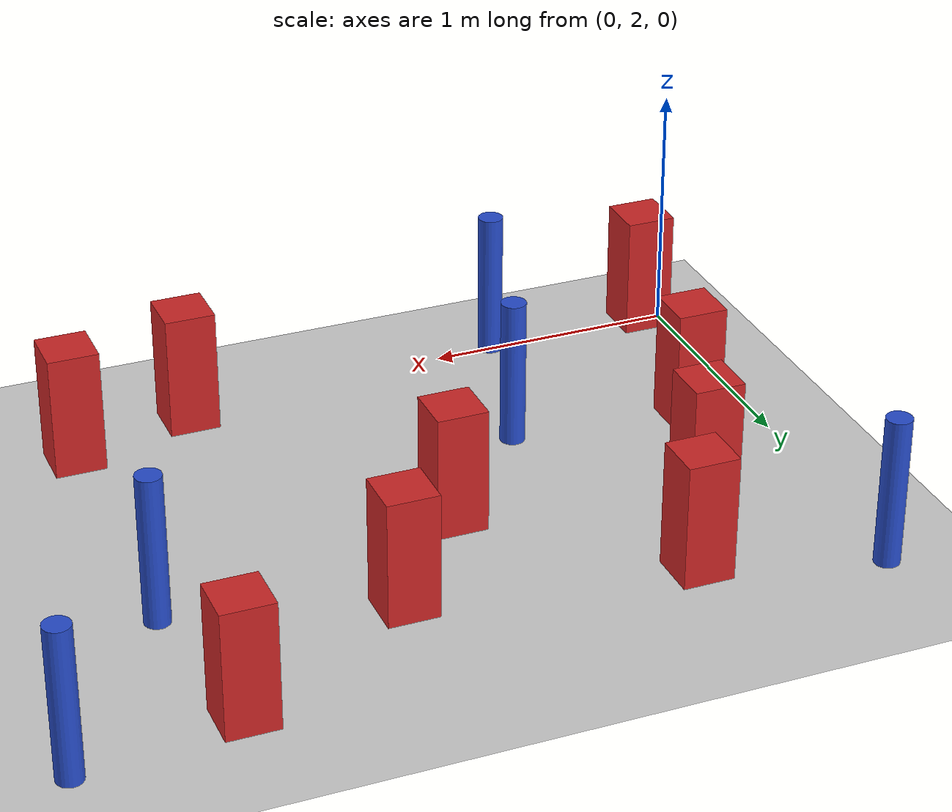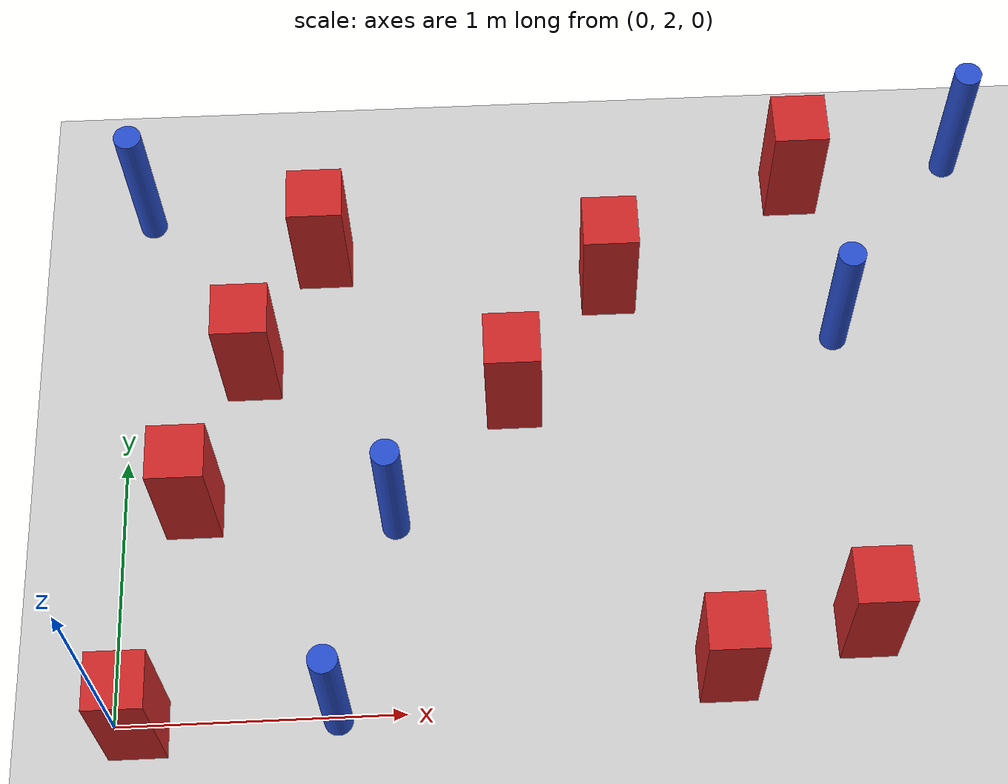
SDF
<sdf version="1.6">
 <world name="default">
  <model name="ground_plane">
   <static>1</static>
   <link name="link">
    <collision name="collision">
     <geometry><plane><normal>0 0 1</normal><size>100 100</size></plane></geometry>
     <surface><friction><ode><mu>100</mu><mu2>50</mu2></ode></friction></surface>
    </collision>
    <visual name="visual">
     <cast_shadows>0</cast_shadows>
     <geometry><plane><normal>0 0 1</normal><size>100 100</size></plane></geometry>
     <material>
      <ambient>1.0 1.0 1.0 1.0</ambient>
      <diffuse>0.8 0.8 0.8 1.0</diffuse>
      <specular>0.01 0.01 0.01 1.000000</specular>
     </material>
    </visual>
   </link>
  </model>
  <model name="pole_obstacle32">
   <static>true</static>
   <pose>0.96854789514 2.70589181334 7.38925637345e-09 -8.47170692799e-08 1.24976765046e-08 -1.74513093018e-07</pose>
   <link name="link">
    <pose>0 0 0.3 0 -0 0</pose>
    <inertial>
     <mass>1</mass>
     <inertia><ixx>0.145833</ixx><ixy>0</ixy><ixz>0</ixz><iyy>0.145833</iyy><iyz>0</iyz><izz>0.125</izz></inertia>
    </inertial>
    <collision name="collision">
     <geometry><cylinder><radius>0.05</radius><length>.6</length></cylinder></geometry>
    </collision>
    <visual name="visual">
     <geometry><cylinder><radius>0.05</radius><length>.6</length></cylinder></geometry>
     <material>
      <script><name>Gazebo/Blue</name><uri>file://media/materials/scripts/gazebo.material</uri></script>
     </material>
    </visual>
   </link>
  </model>
  <model name="pole_obstacle46">
   <static>true</static>
   <pose>3.12625341546 4.15890383499 7.38925637345e-09 -8.47170692798e-08 1.24976765033e-08 -1.74513093019e-07</pose>
   <link name="link">
    <pose>0 0 0.3 0 -0 0</pose>
    <inertial>
     <mass>1</mass>
     <inertia><ixx>0.145833</ixx><ixy>0</ixy><ixz>0</ixz><iyy>0.145833</iyy><iyz>0</iyz><izz>0.125</izz></inertia>
    </inertial>
    <collision name="collision">
     <geometry><cylinder><radius>0.05</radius><length>.6</length></cylinder></geometry>
    </collision>
    <visual name="visual">
     <geometry><cylinder><radius>0.05</radius><length>.6</length></cylinder></geometry>
     <material>
      <script><name>Gazebo/Blue</name><uri>file://media/materials/scripts/gazebo.material</uri></script>
     </material>
    </visual>
   </link>
  </model>
  <model name="square_post_obstacle59">
   <static>true</static>
   <pose>1.40726004822 3.18187855667 1.91545236811e-07 -7.35059704564e-06 1.12565212e-07 2.39332434364e-05</pose>
   <link name="link">
    <pose>0 0 0.25 0 -0 0</pose>
    <inertial>
     <mass>100</mass>
     <inertia>
      <ixx>0.166667</ixx>
      <ixy>0</ixy>
      <ixz>0</ixz>
      <iyy>0.166667</iyy>
      <iyz>0</iyz>
      <izz>0.166667</izz>
     </inertia>
    </inertial>
    <collision name="collision"><geometry><box><size>.2 .2 .5</size></box></geometry></collision>
    <visual name="visual">
     <geometry><box><size>.2 .2 .5</size></box></geometry>
     <material>
      <script><name>Gazebo/Red</name><uri>file://media/materials/scripts/gazebo.material</uri></script>
     </material>
    </visual>
   </link>
  </model>
  <model name="square_post_obstacle80">
   <static>true</static>
   <pose>0.714723443884 3.81570896859 1.91545236811e-07 -7.35059704564e-06 1.12565212e-07 2.39332434364e-05</pose>
   <link name="link">
    <pose>0 0 0.25 0 -0 0</pose>
    <inertial>
     <mass>100</mass>
     <inertia>
      <ixx>0.166667</ixx>
      <ixy>0</ixy>
      <ixz>0</ixz>
      <iyy>0.166667</iyy>
      <iyz>0</iyz>
      <izz>0.166667</izz>
     </inertia>
    </inertial>
    <collision name="collision"><geometry><box><size>.2 .2 .5</size></box></geometry></collision>
    <visual name="visual">
     <geometry><box><size>.2 .2 .5</size></box></geometry>
     <material>
      <script><name>Gazebo/Red</name><uri>file://media/materials/scripts/gazebo.material</uri></script>
     </material>
    </visual>
   </link>
  </model>
  <model name="pole_obstacle110">
   <static>true</static>
   <pose>0.050401922978 4.01981426665 7.38925637345e-09 -8.47170692799e-08 1.24976765e-08 -1.74513093021e-07</pose>
   <link name="link">
    <pose>0 0 0.3 0 -0 0</pose>
    <inertial>
     <mass>1</mass>
     <inertia><ixx>0.145833</ixx><ixy>0</ixy><ixz>0</ixz><iyy>0.145833</iyy><iyz>0</iyz><izz>0.125</izz></inertia>
    </inertial>
    <collision name="collision">
     <geometry><cylinder><radius>0.05</radius><length>.6</length></cylinder></geometry>
    </collision>
    <visual name="visual">
     <geometry><cylinder><radius>0.05</radius><length>.6</length></cylinder></geometry>
     <material>
      <script><name>Gazebo/Blue</name><uri>file://media/materials/scripts/gazebo.material</uri></script>
     </material>
    </visual>
   </link>
  </model>
  <model name="pole_obstacle115">
   <static>true</static>
   <pose>0.764776637621 1.98578209945 7.38925637345e-09 -8.47170692799e-08 1.24976765066e-08 -1.74513093016e-07</pose>
   <link name="link">
    <pose>0 0 0.3 0 -0 0</pose>
    <inertial>
     <mass>1</mass>
     <inertia><ixx>0.145833</ixx><ixy>0</ixy><ixz>0</ixz><iyy>0.145833</iyy><iyz>0</iyz><izz>0.125</izz></inertia>
    </inertial>
    <collision name="collision">
     <geometry><cylinder><radius>0.05</radius><length>.6</length></cylinder></geometry>
    </collision>
    <visual name="visual">
     <geometry><cylinder><radius>0.05</radius><length>.6</length></cylinder></geometry>
     <material>
      <script><name>Gazebo/Blue</name><uri>file://media/materials/scripts/gazebo.material</uri></script>
     </material>
    </visual>
   </link>
  </model>
  <model name="square_post_obstacle108">
   <static>true</static>
   <pose>1.77909898433 3.64906854002 1.91545236811e-07 -7.35059704564e-06 1.12565212e-07 2.39332434364e-05</pose>
   <link name="link">
    <pose>0 0 0.25 0 -0 0</pose>
    <inertial>
     <mass>100</mass>
     <inertia>
      <ixx>0.166667</ixx>
      <ixy>0</ixy>
      <ixz>0</ixz>
      <iyy>0.166667</iyy>
      <iyz>0</iyz>
      <izz>0.166667</izz>
     </inertia>
    </inertial>
    <collision name="collision"><geometry><box><size>.2 .2 .5</size></box></geometry></collision>
    <visual name="visual">
     <geometry><box><size>.2 .2 .5</size></box></geometry>
     <material>
      <script><name>Gazebo/Red</name><uri>file://media/materials/scripts/gazebo.material</uri></script>
     </material>
    </visual>
   </link>
  </model>
  <model name="square_post_obstacle115">
   <static>true</static>
   <pose>0.45429999532 3.34309313988 1.91545236811e-07 -7.35059704564e-06 1.12565212e-07 2.39332434364e-05</pose>
   <link name="link">
    <pose>0 0 0.25 0 -0 0</pose>
    <inertial>
     <mass>100</mass>
     <inertia>
      <ixx>0.166667</ixx>
      <ixy>0</ixy>
      <ixz>0</ixz>
      <iyy>0.166667</iyy>
      <iyz>0</iyz>
      <izz>0.166667</izz>
     </inertia>
    </inertial>
    <collision name="collision"><geometry><box><size>.2 .2 .5</size></box></geometry></collision>
    <visual name="visual">
     <geometry><box><size>.2 .2 .5</size></box></geometry>
     <material>
      <script><name>Gazebo/Red</name><uri>file://media/materials/scripts/gazebo.material</uri></script>
     </material>
    </visual>
   </link>
  </model>
  <model name="square_post_obstacle120">
   <static>true</static>
   <pose>2.09988776933 2.09452551395 1.91545236811e-07 -7.35059704564e-06 1.12565212e-07 2.39332434364e-05</pose>
   <link name="link">
    <pose>0 0 0.25 0 -0 0</pose>
    <inertial>
     <mass>100</mass>
     <inertia>
      <ixx>0.166667</ixx>
      <ixy>0</ixy>
      <ixz>0</ixz>
      <iyy>0.166667</iyy>
      <iyz>0</iyz>
      <izz>0.166667</izz>
     </inertia>
    </inertial>
    <collision name="collision"><geometry><box><size>.2 .2 .5</size></box></geometry></collision>
    <visual name="visual">
     <geometry><box><size>.2 .2 .5</size></box></geometry>
     <material>
      <script><name>Gazebo/Red</name><uri>file://media/materials/scripts/gazebo.material</uri></script>
     </material>
    </visual>
   </link>
  </model>
  <model name="square_post_obstacle141">
   <static>true</static>
   <pose>0.0869611090962 1.98392740131 1.91545236811e-07 -7.35059704564e-06 1.12565212e-07 2.39332434364e-05</pose>
   <link name="link">
    <pose>0 0 0.25 0 -0 0</pose>
    <inertial>
     <mass>100</mass>
     <inertia>
      <ixx>0.166667</ixx>
      <ixy>0</ixy>
      <ixz>0</ixz>
      <iyy>0.166667</iyy>
      <iyz>0</iyz>
      <izz>0.166667</izz>
     </inertia>
    </inertial>
    <collision name="collision"><geometry><box><size>.2 .2 .5</size></box></geometry></collision>
    <visual name="visual">
     <geometry><box><size>.2 .2 .5</size></box></geometry>
     <material>
      <script><name>Gazebo/Red</name><uri>file://media/materials/scripts/gazebo.material</uri></script>
     </material>
    </visual>
   </link>
  </model>
  <model name="square_post_obstacle143">
   <static>true</static>
   <pose>2.5057814995 4.06292753954 1.91545236811e-07 -7.35059704564e-06 1.12565212e-07 2.39332434364e-05</pose>
   <link name="link">
    <pose>0 0 0.25 0 -0 0</pose>
    <inertial>
     <mass>100</mass>
     <inertia>
      <ixx>0.166667</ixx>
      <ixy>0</ixy>
      <ixz>0</ixz>
      <iyy>0.166667</iyy>
      <iyz>0</iyz>
      <izz>0.166667</izz>
     </inertia>
    </inertial>
    <collision name="collision"><geometry><box><size>.2 .2 .5</size></box></geometry></collision>
    <visual name="visual">
     <geometry><box><size>.2 .2 .5</size></box></geometry>
     <material>
      <script><name>Gazebo/Red</name><uri>file://media/materials/scripts/gazebo.material</uri></script>
     </material>
    </visual>
   </link>
  </model>
  <model name="pole_obstacle161">
   <static>true</static>
   <pose>2.61265467343 3.40513679091 7.38925637345e-09 -8.47170692798e-08 1.24976764939e-08 -1.74513093025e-07</pose>
   <link name="link">
    <pose>0 0 0.3 0 -0 0</pose>
    <inertial>
     <mass>1</mass>
     <inertia><ixx>0.145833</ixx><ixy>0</ixy><ixz>0</ixz><iyy>0.145833</iyy><iyz>0</iyz><izz>0.125</izz></inertia>
    </inertial>
    <collision name="collision">
     <geometry><cylinder><radius>0.05</radius><length>.6</length></cylinder></geometry>
    </collision>
    <visual name="visual">
     <geometry><cylinder><radius>0.05</radius><length>.6</length></cylinder></geometry>
     <material>
      <script><name>Gazebo/Blue</name><uri>file://media/materials/scripts/gazebo.material</uri></script>
     </material>
    </visual>
   </link>
  </model>
  <model name="square_post_obstacle163">
   <static>true</static>
   <pose>2.59728123891 2.23319288615 1.91545236811e-07 -7.35059704564e-06 1.12565212e-07 2.39332434364e-05</pose>
   <link name="link">
    <pose>0 0 0.25 0 -0 0</pose>
    <inertial>
     <mass>100</mass>
     <inertia>
      <ixx>0.166667</ixx>
      <ixy>0</ixy>
      <ixz>0</ixz>
      <iyy>0.166667</iyy>
      <iyz>0</iyz>
      <izz>0.166667</izz>
     </inertia>
    </inertial>
    <collision name="collision"><geometry><box><size>.2 .2 .5</size></box></geometry></collision>
    <visual name="visual">
     <geometry><box><size>.2 .2 .5</size></box></geometry>
     <material>
      <script><name>Gazebo/Red</name><uri>file://media/materials/scripts/gazebo.material</uri></script>
     </material>
    </visual>
   </link>
  </model>
  <model name="square_post_obstacle191">
   <static>true</static>
   <pose>0.25123047751 2.79374631489 1.91545236811e-07 -7.35059704564e-06 1.12565212e-07 2.39332434364e-05</pose>
   <link name="link">
    <pose>0 0 0.25 0 -0 0</pose>
    <inertial>
     <mass>100</mass>
     <inertia>
      <ixx>0.166667</ixx>
      <ixy>0</ixy>
      <ixz>0</ixz>
      <iyy>0.166667</iyy>
      <iyz>0</iyz>
      <izz>0.166667</izz>
     </inertia>
    </inertial>
    <collision name="collision"><geometry><box><size>.2 .2 .5</size></box></geometry></collision>
    <visual name="visual">
     <geometry><box><size>.2 .2 .5</size></box></geometry>
     <material>
      <script><name>Gazebo/Red</name><uri>file://media/materials/scripts/gazebo.material</uri></script>
     </material>
    </visual>
   </link>
  </model>
 </world>
</sdf>
